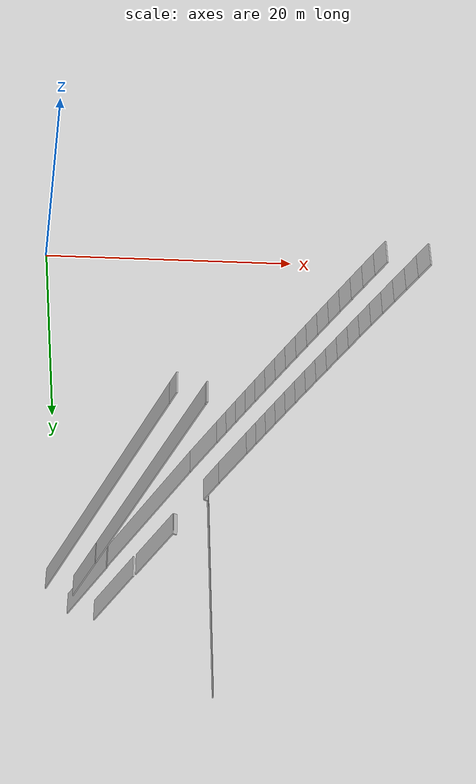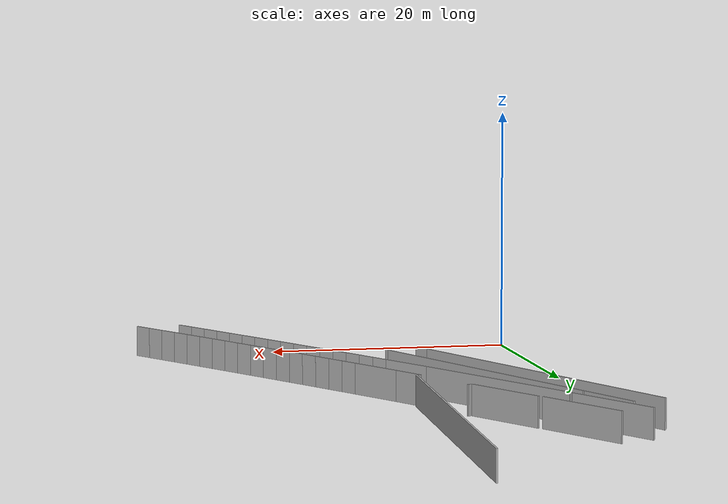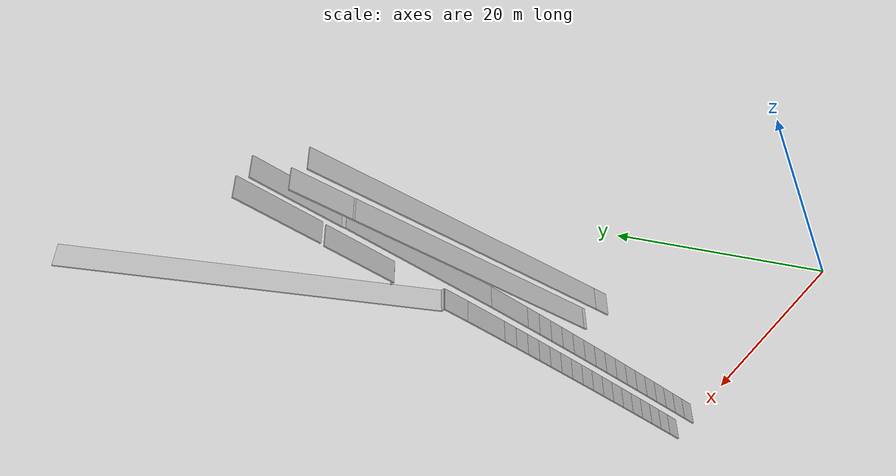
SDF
<?xml version="1.0" ?>
<sdf version="1.6">
  <model name="sps_4727">
    <pose frame="">0 0 0 0 -0 0</pose>
    <static>1</static>
    <self_collide>0</self_collide>
    <allow_auto_disable>0</allow_auto_disable>
    <link name="Wall324">
      <kinematic>0</kinematic>
      <gravity>1</gravity>
      <self_collide>0</self_collide>
      <collision name="collision">
        <geometry>
          <box>
            <size>0.205656 0.15 2.5</size>
          </box>
        </geometry>
        <pose frame="">0 0 0 0 -0 0</pose>
      </collision>
      <visual name="visual">
        <geometry>
          <box>
            <size>0.205656 0.15 2.5</size>
          </box>
        </geometry>
        <pose frame="">0 0 0 0 -0 0</pose>
        <cast_shadows>1</cast_shadows>
        <transparency>0.0</transparency>
      </visual>
      <pose frame="">3.78423 42.6752 1.25 0 0 -1.18594</pose>
    </link>
    <link name="Wall391">
      <kinematic>0</kinematic>
      <gravity>1</gravity>
      <self_collide>0</self_collide>
      <collision name="collision">
        <geometry>
          <box>
            <size>9.32021 0.15 2.5</size>
          </box>
        </geometry>
        <pose frame="">0 0 0 0 -0 0</pose>
      </collision>
      <visual name="visual">
        <geometry>
          <box>
            <size>9.32021 0.15 2.5</size>
          </box>
        </geometry>
        <pose frame="">0 0 0 0 -0 0</pose>
        <cast_shadows>1</cast_shadows>
        <transparency>0.0</transparency>
      </visual>
      <pose frame="">2.81676 47.721 1.25 0 0 -1.11304</pose>
    </link>
    <link name="Wall392">
      <kinematic>0</kinematic>
      <gravity>1</gravity>
      <self_collide>0</self_collide>
      <collision name="collision">
        <geometry>
          <box>
            <size>0.404799 0.15 2.5</size>
          </box>
        </geometry>
        <pose frame="">0 0 0 0 -0 0</pose>
      </collision>
      <visual name="visual">
        <geometry>
          <box>
            <size>0.404799 0.15 2.5</size>
          </box>
        </geometry>
        <pose frame="">0 0 0 0 -0 0</pose>
        <cast_shadows>1</cast_shadows>
        <transparency>0.0</transparency>
      </visual>
      <pose frame="">4.93566 43.3472 1.25 0 0 -1.27284</pose>
    </link>
    <link name="Wall393">
      <kinematic>0</kinematic>
      <gravity>1</gravity>
      <self_collide>0</self_collide>
      <collision name="collision">
        <geometry>
          <box>
            <size>9.08202 0.15 2.5</size>
          </box>
        </geometry>
        <pose frame="">0 0 0 0 -0 0</pose>
      </collision>
      <visual name="visual">
        <geometry>
          <box>
            <size>9.08202 0.15 2.5</size>
          </box>
        </geometry>
        <pose frame="">0 0 0 0 -0 0</pose>
        <cast_shadows>1</cast_shadows>
        <transparency>0.0</transparency>
      </visual>
      <pose frame="">5.54427 48.9319 1.25 0 0 -1.10902</pose>
    </link>
    <link name="Wall394">
      <kinematic>0</kinematic>
      <gravity>1</gravity>
      <self_collide>0</self_collide>
      <collision name="collision">
        <geometry>
          <box>
            <size>31.876 0.15 2.5</size>
          </box>
        </geometry>
        <pose frame="">0 0 0 0 -0 0</pose>
      </collision>
      <visual name="visual">
        <geometry>
          <box>
            <size>31.876 0.15 2.5</size>
          </box>
        </geometry>
        <pose frame="">0 0 0 0 -0 0</pose>
        <cast_shadows>1</cast_shadows>
        <transparency>0.0</transparency>
      </visual>
      <pose frame="">4.59255 32.6699 1.25 0 0 -1.18671</pose>
    </link>
    <link name="Wall395">
      <kinematic>0</kinematic>
      <gravity>1</gravity>
      <self_collide>0</self_collide>
      <collision name="collision">
        <geometry>
          <box>
            <size>1.59371 0.15 2.5</size>
          </box>
        </geometry>
        <pose frame="">0 0 0 0 -0 0</pose>
      </collision>
      <visual name="visual">
        <geometry>
          <box>
            <size>1.59371 0.15 2.5</size>
          </box>
        </geometry>
        <pose frame="">0 0 0 0 -0 0</pose>
        <cast_shadows>1</cast_shadows>
        <transparency>0.0</transparency>
      </visual>
      <pose frame="">10.8632 17.1543 1.25 0 0 -1.18671</pose>
    </link>
    <link name="Wall664">
      <kinematic>0</kinematic>
      <gravity>1</gravity>
      <self_collide>0</self_collide>
      <collision name="collision">
        <geometry>
          <box>
            <size>6.2563 0.15 2.5</size>
          </box>
        </geometry>
        <pose frame="">0 0 0 0 -0 0</pose>
      </collision>
      <visual name="visual">
        <geometry>
          <box>
            <size>6.2563 0.15 2.5</size>
          </box>
        </geometry>
        <pose frame="">0 0 0 0 -0 0</pose>
        <cast_shadows>1</cast_shadows>
        <transparency>0.0</transparency>
      </visual>
      <pose frame="">2.57363 45.6708 1.25 0 0 -1.18676</pose>
    </link>
    <link name="Wall665">
      <kinematic>0</kinematic>
      <gravity>1</gravity>
      <self_collide>0</self_collide>
      <collision name="collision">
        <geometry>
          <box>
            <size>26.6269 0.15 2.5</size>
          </box>
        </geometry>
        <pose frame="">0 0 0 0 -0 0</pose>
      </collision>
      <visual name="visual">
        <geometry>
          <box>
            <size>26.6269 0.15 2.5</size>
          </box>
        </geometry>
        <pose frame="">0 0 0 0 -0 0</pose>
        <cast_shadows>1</cast_shadows>
        <transparency>0.0</transparency>
      </visual>
      <pose frame="">8.81167 30.2365 1.25 0 0 -1.1867</pose>
    </link>
    <link name="Wall666">
      <kinematic>0</kinematic>
      <gravity>1</gravity>
      <self_collide>0</self_collide>
      <collision name="collision">
        <geometry>
          <box>
            <size>0.380969 0.15 2.5</size>
          </box>
        </geometry>
        <pose frame="">0 0 0 0 -0 0</pose>
      </collision>
      <visual name="visual">
        <geometry>
          <box>
            <size>0.380969 0.15 2.5</size>
          </box>
        </geometry>
        <pose frame="">0 0 0 0 -0 0</pose>
        <cast_shadows>1</cast_shadows>
        <transparency>0.0</transparency>
      </visual>
      <pose frame="">13.8719 17.7165 1.25 0 0 -1.1867</pose>
    </link>
    <link name="Wall669">
      <kinematic>0</kinematic>
      <gravity>1</gravity>
      <self_collide>0</self_collide>
      <collision name="collision">
        <geometry>
          <box>
            <size>35.9252 0.15 2.5</size>
          </box>
        </geometry>
        <pose frame="">0 0 0 0 -0 0</pose>
      </collision>
      <visual name="visual">
        <geometry>
          <box>
            <size>35.9252 0.15 2.5</size>
          </box>
        </geometry>
        <pose frame="">0 0 0 0 -0 0</pose>
        <cast_shadows>1</cast_shadows>
        <transparency>0.0</transparency>
      </visual>
      <pose frame="">15.6361 49.9612 1.25 0 0 -1.62929</pose>
    </link>
    <link name="Wall6446">
      <kinematic>0</kinematic>
      <gravity>1</gravity>
      <self_collide>0</self_collide>
      <collision name="collision">
        <geometry>
          <box>
            <size>17.3611 0.15 2.5</size>
          </box>
        </geometry>
        <pose frame="">0 0 0 0 -0 0</pose>
      </collision>
      <visual name="visual">
        <geometry>
          <box>
            <size>17.3611 0.15 2.5</size>
          </box>
        </geometry>
        <pose frame="">0 0 0 0 -0 0</pose>
        <cast_shadows>1</cast_shadows>
        <transparency>0.0</transparency>
      </visual>
      <pose frame="">8.88277 35.3924 1.25 0 0 -1.10642</pose>
    </link>
    <link name="Wall6447">
      <kinematic>0</kinematic>
      <gravity>1</gravity>
      <self_collide>0</self_collide>
      <collision name="collision">
        <geometry>
          <box>
            <size>5.01646 0.15 2.5</size>
          </box>
        </geometry>
        <pose frame="">0 0 0 0 -0 0</pose>
      </collision>
      <visual name="visual">
        <geometry>
          <box>
            <size>5.01646 0.15 2.5</size>
          </box>
        </geometry>
        <pose frame="">0 0 0 0 -0 0</pose>
        <cast_shadows>1</cast_shadows>
        <transparency>0.0</transparency>
      </visual>
      <pose frame="">13.9296 25.4068 1.25 0 0 -1.09038</pose>
    </link>
    <link name="Wall6448">
      <kinematic>0</kinematic>
      <gravity>1</gravity>
      <self_collide>0</self_collide>
      <collision name="collision">
        <geometry>
          <box>
            <size>1.68618 0.15 2.5</size>
          </box>
        </geometry>
        <pose frame="">0 0 0 0 -0 0</pose>
      </collision>
      <visual name="visual">
        <geometry>
          <box>
            <size>1.68618 0.15 2.5</size>
          </box>
        </geometry>
        <pose frame="">0 0 0 0 -0 0</pose>
        <cast_shadows>1</cast_shadows>
        <transparency>0.0</transparency>
      </visual>
      <pose frame="">15.4809 22.4361 1.25 0 0 -1.08717</pose>
    </link>
    <link name="Wall6449">
      <kinematic>0</kinematic>
      <gravity>1</gravity>
      <self_collide>0</self_collide>
      <collision name="collision">
        <geometry>
          <box>
            <size>1.68632 0.15 2.5</size>
          </box>
        </geometry>
        <pose frame="">0 0 0 0 -0 0</pose>
      </collision>
      <visual name="visual">
        <geometry>
          <box>
            <size>1.68632 0.15 2.5</size>
          </box>
        </geometry>
        <pose frame="">0 0 0 0 -0 0</pose>
        <cast_shadows>1</cast_shadows>
        <transparency>0.0</transparency>
      </visual>
      <pose frame="">16.2662 20.9439 1.25 0 0 -1.08554</pose>
    </link>
    <link name="Wall6450">
      <kinematic>0</kinematic>
      <gravity>1</gravity>
      <self_collide>0</self_collide>
      <collision name="collision">
        <geometry>
          <box>
            <size>1.68625 0.15 2.5</size>
          </box>
        </geometry>
        <pose frame="">0 0 0 0 -0 0</pose>
      </collision>
      <visual name="visual">
        <geometry>
          <box>
            <size>1.68625 0.15 2.5</size>
          </box>
        </geometry>
        <pose frame="">0 0 0 0 -0 0</pose>
        <cast_shadows>1</cast_shadows>
        <transparency>0.0</transparency>
      </visual>
      <pose frame="">17.054 19.453 1.25 0 0 -1.08376</pose>
    </link>
    <link name="Wall6451">
      <kinematic>0</kinematic>
      <gravity>1</gravity>
      <self_collide>0</self_collide>
      <collision name="collision">
        <geometry>
          <box>
            <size>1.68621 0.15 2.5</size>
          </box>
        </geometry>
        <pose frame="">0 0 0 0 -0 0</pose>
      </collision>
      <visual name="visual">
        <geometry>
          <box>
            <size>1.68621 0.15 2.5</size>
          </box>
        </geometry>
        <pose frame="">0 0 0 0 -0 0</pose>
        <cast_shadows>1</cast_shadows>
        <transparency>0.0</transparency>
      </visual>
      <pose frame="">17.8444 17.9635 1.25 0 0 -1.0821</pose>
    </link>
    <link name="Wall6452">
      <kinematic>0</kinematic>
      <gravity>1</gravity>
      <self_collide>0</self_collide>
      <collision name="collision">
        <geometry>
          <box>
            <size>1.68612 0.15 2.5</size>
          </box>
        </geometry>
        <pose frame="">0 0 0 0 -0 0</pose>
      </collision>
      <visual name="visual">
        <geometry>
          <box>
            <size>1.68612 0.15 2.5</size>
          </box>
        </geometry>
        <pose frame="">0 0 0 0 -0 0</pose>
        <cast_shadows>1</cast_shadows>
        <transparency>0.0</transparency>
      </visual>
      <pose frame="">18.6374 16.4754 1.25 0 0 -1.08035</pose>
    </link>
    <link name="Wall6453">
      <kinematic>0</kinematic>
      <gravity>1</gravity>
      <self_collide>0</self_collide>
      <collision name="collision">
        <geometry>
          <box>
            <size>1.68625 0.15 2.5</size>
          </box>
        </geometry>
        <pose frame="">0 0 0 0 -0 0</pose>
      </collision>
      <visual name="visual">
        <geometry>
          <box>
            <size>1.68625 0.15 2.5</size>
          </box>
        </geometry>
        <pose frame="">0 0 0 0 -0 0</pose>
        <cast_shadows>1</cast_shadows>
        <transparency>0.0</transparency>
      </visual>
      <pose frame="">19.4328 14.9886 1.25 0 0 -1.07875</pose>
    </link>
    <link name="Wall6454">
      <kinematic>0</kinematic>
      <gravity>1</gravity>
      <self_collide>0</self_collide>
      <collision name="collision">
        <geometry>
          <box>
            <size>1.68606 0.15 2.5</size>
          </box>
        </geometry>
        <pose frame="">0 0 0 0 -0 0</pose>
      </collision>
      <visual name="visual">
        <geometry>
          <box>
            <size>1.68606 0.15 2.5</size>
          </box>
        </geometry>
        <pose frame="">0 0 0 0 -0 0</pose>
        <cast_shadows>1</cast_shadows>
        <transparency>0.0</transparency>
      </visual>
      <pose frame="">20.2307 13.5032 1.25 0 0 -1.07697</pose>
    </link>
    <link name="Wall6455">
      <kinematic>0</kinematic>
      <gravity>1</gravity>
      <self_collide>0</self_collide>
      <collision name="collision">
        <geometry>
          <box>
            <size>1.6862 0.15 2.5</size>
          </box>
        </geometry>
        <pose frame="">0 0 0 0 -0 0</pose>
      </collision>
      <visual name="visual">
        <geometry>
          <box>
            <size>1.6862 0.15 2.5</size>
          </box>
        </geometry>
        <pose frame="">0 0 0 0 -0 0</pose>
        <cast_shadows>1</cast_shadows>
        <transparency>0.0</transparency>
      </visual>
      <pose frame="">21.0312 12.0192 1.25 0 0 -1.07529</pose>
    </link>
    <link name="Wall6456">
      <kinematic>0</kinematic>
      <gravity>1</gravity>
      <self_collide>0</self_collide>
      <collision name="collision">
        <geometry>
          <box>
            <size>1.68613 0.15 2.5</size>
          </box>
        </geometry>
        <pose frame="">0 0 0 0 -0 0</pose>
      </collision>
      <visual name="visual">
        <geometry>
          <box>
            <size>1.68613 0.15 2.5</size>
          </box>
        </geometry>
        <pose frame="">0 0 0 0 -0 0</pose>
        <cast_shadows>1</cast_shadows>
        <transparency>0.0</transparency>
      </visual>
      <pose frame="">21.8341 10.5365 1.25 0 0 -1.07362</pose>
    </link>
    <link name="Wall6457">
      <kinematic>0</kinematic>
      <gravity>1</gravity>
      <self_collide>0</self_collide>
      <collision name="collision">
        <geometry>
          <box>
            <size>1.68623 0.15 2.5</size>
          </box>
        </geometry>
        <pose frame="">0 0 0 0 -0 0</pose>
      </collision>
      <visual name="visual">
        <geometry>
          <box>
            <size>1.68623 0.15 2.5</size>
          </box>
        </geometry>
        <pose frame="">0 0 0 0 -0 0</pose>
        <cast_shadows>1</cast_shadows>
        <transparency>0.0</transparency>
      </visual>
      <pose frame="">22.6395 9.0551 1.25 0 0 -1.072</pose>
    </link>
    <link name="Wall6458">
      <kinematic>0</kinematic>
      <gravity>1</gravity>
      <self_collide>0</self_collide>
      <collision name="collision">
        <geometry>
          <box>
            <size>1.68616 0.15 2.5</size>
          </box>
        </geometry>
        <pose frame="">0 0 0 0 -0 0</pose>
      </collision>
      <visual name="visual">
        <geometry>
          <box>
            <size>1.68616 0.15 2.5</size>
          </box>
        </geometry>
        <pose frame="">0 0 0 0 -0 0</pose>
        <cast_shadows>1</cast_shadows>
        <transparency>0.0</transparency>
      </visual>
      <pose frame="">23.4473 7.575 1.25 0 0 -1.07041</pose>
    </link>
    <link name="Wall6459">
      <kinematic>0</kinematic>
      <gravity>1</gravity>
      <self_collide>0</self_collide>
      <collision name="collision">
        <geometry>
          <box>
            <size>1.68638 0.15 2.5</size>
          </box>
        </geometry>
        <pose frame="">0 0 0 0 -0 0</pose>
      </collision>
      <visual name="visual">
        <geometry>
          <box>
            <size>1.68638 0.15 2.5</size>
          </box>
        </geometry>
        <pose frame="">0 0 0 0 -0 0</pose>
        <cast_shadows>1</cast_shadows>
        <transparency>0.0</transparency>
      </visual>
      <pose frame="">24.2577 6.09618 1.25 0 0 -1.06867</pose>
    </link>
    <link name="Wall6460">
      <kinematic>0</kinematic>
      <gravity>1</gravity>
      <self_collide>0</self_collide>
      <collision name="collision">
        <geometry>
          <box>
            <size>1.68617 0.15 2.5</size>
          </box>
        </geometry>
        <pose frame="">0 0 0 0 -0 0</pose>
      </collision>
      <visual name="visual">
        <geometry>
          <box>
            <size>1.68617 0.15 2.5</size>
          </box>
        </geometry>
        <pose frame="">0 0 0 0 -0 0</pose>
        <cast_shadows>1</cast_shadows>
        <transparency>0.0</transparency>
      </visual>
      <pose frame="">25.0706 4.61879 1.25 0 0 -1.06686</pose>
    </link>
    <link name="Wall6461">
      <kinematic>0</kinematic>
      <gravity>1</gravity>
      <self_collide>0</self_collide>
      <collision name="collision">
        <geometry>
          <box>
            <size>1.68615 0.15 2.5</size>
          </box>
        </geometry>
        <pose frame="">0 0 0 0 -0 0</pose>
      </collision>
      <visual name="visual">
        <geometry>
          <box>
            <size>1.68615 0.15 2.5</size>
          </box>
        </geometry>
        <pose frame="">0 0 0 0 -0 0</pose>
        <cast_shadows>1</cast_shadows>
        <transparency>0.0</transparency>
      </visual>
      <pose frame="">25.886 3.1429 1.25 0 0 -1.06524</pose>
    </link>
    <link name="Wall6462">
      <kinematic>0</kinematic>
      <gravity>1</gravity>
      <self_collide>0</self_collide>
      <collision name="collision">
        <geometry>
          <box>
            <size>1.68607 0.15 2.5</size>
          </box>
        </geometry>
        <pose frame="">0 0 0 0 -0 0</pose>
      </collision>
      <visual name="visual">
        <geometry>
          <box>
            <size>1.68607 0.15 2.5</size>
          </box>
        </geometry>
        <pose frame="">0 0 0 0 -0 0</pose>
        <cast_shadows>1</cast_shadows>
        <transparency>0.0</transparency>
      </visual>
      <pose frame="">26.704 1.6685 1.25 0 0 -1.06331</pose>
    </link>
    <link name="Wall6463">
      <kinematic>0</kinematic>
      <gravity>1</gravity>
      <self_collide>0</self_collide>
      <collision name="collision">
        <geometry>
          <box>
            <size>1.68628 0.15 2.5</size>
          </box>
        </geometry>
        <pose frame="">0 0 0 0 -0 0</pose>
      </collision>
      <visual name="visual">
        <geometry>
          <box>
            <size>1.68628 0.15 2.5</size>
          </box>
        </geometry>
        <pose frame="">0 0 0 0 -0 0</pose>
        <cast_shadows>1</cast_shadows>
        <transparency>0.0</transparency>
      </visual>
      <pose frame="">27.5245 0.195418 1.25 0 0 -1.06189</pose>
    </link>
    <link name="Wall7347">
      <kinematic>0</kinematic>
      <gravity>1</gravity>
      <self_collide>0</self_collide>
      <collision name="collision">
        <geometry>
          <box>
            <size>7.95327 0.15 2.5</size>
          </box>
        </geometry>
        <pose frame="">0 0 0 0 -0 0</pose>
      </collision>
      <visual name="visual">
        <geometry>
          <box>
            <size>7.95327 0.15 2.5</size>
          </box>
        </geometry>
        <pose frame="">0 0 0 0 -0 0</pose>
        <cast_shadows>1</cast_shadows>
        <transparency>0.0</transparency>
      </visual>
      <pose frame="">9.62426 41.0012 1.25 0 0 -1.10462</pose>
    </link>
    <link name="Wall7348">
      <kinematic>0</kinematic>
      <gravity>1</gravity>
      <self_collide>0</self_collide>
      <collision name="collision">
        <geometry>
          <box>
            <size>0.399638 0.15 2.5</size>
          </box>
        </geometry>
        <pose frame="">0 0 0 0 -0 0</pose>
      </collision>
      <visual name="visual">
        <geometry>
          <box>
            <size>0.399638 0.15 2.5</size>
          </box>
        </geometry>
        <pose frame="">0 0 0 0 -0 0</pose>
        <cast_shadows>1</cast_shadows>
        <transparency>0.0</transparency>
      </visual>
      <pose frame="">11.5901 37.5387 1.25 0 -0 0.466175</pose>
    </link>
    <link name="Wall9277">
      <kinematic>0</kinematic>
      <gravity>1</gravity>
      <self_collide>0</self_collide>
      <collision name="collision">
        <geometry>
          <box>
            <size>1.68081 0.15 2.5</size>
          </box>
        </geometry>
        <pose frame="">0 0 0 0 -0 0</pose>
      </collision>
      <visual name="visual">
        <geometry>
          <box>
            <size>1.68081 0.15 2.5</size>
          </box>
        </geometry>
        <pose frame="">0 0 0 0 -0 0</pose>
        <cast_shadows>1</cast_shadows>
        <transparency>0.0</transparency>
      </visual>
      <pose frame="">31.1389 0.28749 1.25 0 -0 2.08139</pose>
    </link>
    <link name="Wall9278">
      <kinematic>0</kinematic>
      <gravity>1</gravity>
      <self_collide>0</self_collide>
      <collision name="collision">
        <geometry>
          <box>
            <size>1.68071 0.15 2.5</size>
          </box>
        </geometry>
        <pose frame="">0 0 0 0 -0 0</pose>
      </collision>
      <visual name="visual">
        <geometry>
          <box>
            <size>1.68071 0.15 2.5</size>
          </box>
        </geometry>
        <pose frame="">0 0 0 0 -0 0</pose>
        <cast_shadows>1</cast_shadows>
        <transparency>0.0</transparency>
      </visual>
      <pose frame="">30.3188 1.75459 1.25 0 -0 2.07964</pose>
    </link>
    <link name="Wall9279">
      <kinematic>0</kinematic>
      <gravity>1</gravity>
      <self_collide>0</self_collide>
      <collision name="collision">
        <geometry>
          <box>
            <size>1.68092 0.15 2.5</size>
          </box>
        </geometry>
        <pose frame="">0 0 0 0 -0 0</pose>
      </collision>
      <visual name="visual">
        <geometry>
          <box>
            <size>1.68092 0.15 2.5</size>
          </box>
        </geometry>
        <pose frame="">0 0 0 0 -0 0</pose>
        <cast_shadows>1</cast_shadows>
        <transparency>0.0</transparency>
      </visual>
      <pose frame="">29.5012 3.2231 1.25 0 -0 2.07807</pose>
    </link>
    <link name="Wall9280">
      <kinematic>0</kinematic>
      <gravity>1</gravity>
      <self_collide>0</self_collide>
      <collision name="collision">
        <geometry>
          <box>
            <size>1.68069 0.15 2.5</size>
          </box>
        </geometry>
        <pose frame="">0 0 0 0 -0 0</pose>
      </collision>
      <visual name="visual">
        <geometry>
          <box>
            <size>1.68069 0.15 2.5</size>
          </box>
        </geometry>
        <pose frame="">0 0 0 0 -0 0</pose>
        <cast_shadows>1</cast_shadows>
        <transparency>0.0</transparency>
      </visual>
      <pose frame="">28.6858 4.69292 1.25 0 -0 2.07641</pose>
    </link>
    <link name="Wall9281">
      <kinematic>0</kinematic>
      <gravity>1</gravity>
      <self_collide>0</self_collide>
      <collision name="collision">
        <geometry>
          <box>
            <size>1.68081 0.15 2.5</size>
          </box>
        </geometry>
        <pose frame="">0 0 0 0 -0 0</pose>
      </collision>
      <visual name="visual">
        <geometry>
          <box>
            <size>1.68081 0.15 2.5</size>
          </box>
        </geometry>
        <pose frame="">0 0 0 0 -0 0</pose>
        <cast_shadows>1</cast_shadows>
        <transparency>0.0</transparency>
      </visual>
      <pose frame="">27.8731 6.16411 1.25 0 -0 2.07458</pose>
    </link>
    <link name="Wall9282">
      <kinematic>0</kinematic>
      <gravity>1</gravity>
      <self_collide>0</self_collide>
      <collision name="collision">
        <geometry>
          <box>
            <size>1.68074 0.15 2.5</size>
          </box>
        </geometry>
        <pose frame="">0 0 0 0 -0 0</pose>
      </collision>
      <visual name="visual">
        <geometry>
          <box>
            <size>1.68074 0.15 2.5</size>
          </box>
        </geometry>
        <pose frame="">0 0 0 0 -0 0</pose>
        <cast_shadows>1</cast_shadows>
        <transparency>0.0</transparency>
      </visual>
      <pose frame="">27.0627 7.63661 1.25 0 -0 2.07324</pose>
    </link>
    <link name="Wall9283">
      <kinematic>0</kinematic>
      <gravity>1</gravity>
      <self_collide>0</self_collide>
      <collision name="collision">
        <geometry>
          <box>
            <size>1.68086 0.15 2.5</size>
          </box>
        </geometry>
        <pose frame="">0 0 0 0 -0 0</pose>
      </collision>
      <visual name="visual">
        <geometry>
          <box>
            <size>1.68086 0.15 2.5</size>
          </box>
        </geometry>
        <pose frame="">0 0 0 0 -0 0</pose>
        <cast_shadows>1</cast_shadows>
        <transparency>0.0</transparency>
      </visual>
      <pose frame="">26.2548 9.11052 1.25 0 -0 2.07117</pose>
    </link>
    <link name="Wall9284">
      <kinematic>0</kinematic>
      <gravity>1</gravity>
      <self_collide>0</self_collide>
      <collision name="collision">
        <geometry>
          <box>
            <size>1.68074 0.15 2.5</size>
          </box>
        </geometry>
        <pose frame="">0 0 0 0 -0 0</pose>
      </collision>
      <visual name="visual">
        <geometry>
          <box>
            <size>1.68074 0.15 2.5</size>
          </box>
        </geometry>
        <pose frame="">0 0 0 0 -0 0</pose>
        <cast_shadows>1</cast_shadows>
        <transparency>0.0</transparency>
      </visual>
      <pose frame="">25.4496 10.5859 1.25 0 -0 2.0696</pose>
    </link>
    <link name="Wall9285">
      <kinematic>0</kinematic>
      <gravity>1</gravity>
      <self_collide>0</self_collide>
      <collision name="collision">
        <geometry>
          <box>
            <size>1.68095 0.15 2.5</size>
          </box>
        </geometry>
        <pose frame="">0 0 0 0 -0 0</pose>
      </collision>
      <visual name="visual">
        <geometry>
          <box>
            <size>1.68095 0.15 2.5</size>
          </box>
        </geometry>
        <pose frame="">0 0 0 0 -0 0</pose>
        <cast_shadows>1</cast_shadows>
        <transparency>0.0</transparency>
      </visual>
      <pose frame="">24.6468 12.0626 1.25 0 -0 2.068</pose>
    </link>
    <link name="Wall9286">
      <kinematic>0</kinematic>
      <gravity>1</gravity>
      <self_collide>0</self_collide>
      <collision name="collision">
        <geometry>
          <box>
            <size>1.68071 0.15 2.5</size>
          </box>
        </geometry>
        <pose frame="">0 0 0 0 -0 0</pose>
      </collision>
      <visual name="visual">
        <geometry>
          <box>
            <size>1.68071 0.15 2.5</size>
          </box>
        </geometry>
        <pose frame="">0 0 0 0 -0 0</pose>
        <cast_shadows>1</cast_shadows>
        <transparency>0.0</transparency>
      </visual>
      <pose frame="">23.8464 13.5406 1.25 0 -0 2.06622</pose>
    </link>
    <link name="Wall9287">
      <kinematic>0</kinematic>
      <gravity>1</gravity>
      <self_collide>0</self_collide>
      <collision name="collision">
        <geometry>
          <box>
            <size>1.68076 0.15 2.5</size>
          </box>
        </geometry>
        <pose frame="">0 0 0 0 -0 0</pose>
      </collision>
      <visual name="visual">
        <geometry>
          <box>
            <size>1.68076 0.15 2.5</size>
          </box>
        </geometry>
        <pose frame="">0 0 0 0 -0 0</pose>
        <cast_shadows>1</cast_shadows>
        <transparency>0.0</transparency>
      </visual>
      <pose frame="">23.0485 15.0199 1.25 0 -0 2.06459</pose>
    </link>
    <link name="Wall9288">
      <kinematic>0</kinematic>
      <gravity>1</gravity>
      <self_collide>0</self_collide>
      <collision name="collision">
        <geometry>
          <box>
            <size>1.68084 0.15 2.5</size>
          </box>
        </geometry>
        <pose frame="">0 0 0 0 -0 0</pose>
      </collision>
      <visual name="visual">
        <geometry>
          <box>
            <size>1.68084 0.15 2.5</size>
          </box>
        </geometry>
        <pose frame="">0 0 0 0 -0 0</pose>
        <cast_shadows>1</cast_shadows>
        <transparency>0.0</transparency>
      </visual>
      <pose frame="">22.2531 16.5006 1.25 0 -0 2.06292</pose>
    </link>
    <link name="Wall9289">
      <kinematic>0</kinematic>
      <gravity>1</gravity>
      <self_collide>0</self_collide>
      <collision name="collision">
        <geometry>
          <box>
            <size>1.68084 0.15 2.5</size>
          </box>
        </geometry>
        <pose frame="">0 0 0 0 -0 0</pose>
      </collision>
      <visual name="visual">
        <geometry>
          <box>
            <size>1.68084 0.15 2.5</size>
          </box>
        </geometry>
        <pose frame="">0 0 0 0 -0 0</pose>
        <cast_shadows>1</cast_shadows>
        <transparency>0.0</transparency>
      </visual>
      <pose frame="">21.4603 17.9827 1.25 0 -0 2.06114</pose>
    </link>
    <link name="Wall9290">
      <kinematic>0</kinematic>
      <gravity>1</gravity>
      <self_collide>0</self_collide>
      <collision name="collision">
        <geometry>
          <box>
            <size>1.68099 0.15 2.5</size>
          </box>
        </geometry>
        <pose frame="">0 0 0 0 -0 0</pose>
      </collision>
      <visual name="visual">
        <geometry>
          <box>
            <size>1.68099 0.15 2.5</size>
          </box>
        </geometry>
        <pose frame="">0 0 0 0 -0 0</pose>
        <cast_shadows>1</cast_shadows>
        <transparency>0.0</transparency>
      </visual>
      <pose frame="">20.6699 19.4662 1.25 0 -0 2.05953</pose>
    </link>
    <link name="Wall9291">
      <kinematic>0</kinematic>
      <gravity>1</gravity>
      <self_collide>0</self_collide>
      <collision name="collision">
        <geometry>
          <box>
            <size>1.68065 0.15 2.5</size>
          </box>
        </geometry>
        <pose frame="">0 0 0 0 -0 0</pose>
      </collision>
      <visual name="visual">
        <geometry>
          <box>
            <size>1.68065 0.15 2.5</size>
          </box>
        </geometry>
        <pose frame="">0 0 0 0 -0 0</pose>
        <cast_shadows>1</cast_shadows>
        <transparency>0.0</transparency>
      </visual>
      <pose frame="">19.8819 20.9509 1.25 0 -0 2.05783</pose>
    </link>
    <link name="Wall9292">
      <kinematic>0</kinematic>
      <gravity>1</gravity>
      <self_collide>0</self_collide>
      <collision name="collision">
        <geometry>
          <box>
            <size>1.68064 0.15 2.5</size>
          </box>
        </geometry>
        <pose frame="">0 0 0 0 -0 0</pose>
      </collision>
      <visual name="visual">
        <geometry>
          <box>
            <size>1.68064 0.15 2.5</size>
          </box>
        </geometry>
        <pose frame="">0 0 0 0 -0 0</pose>
        <cast_shadows>1</cast_shadows>
        <transparency>0.0</transparency>
      </visual>
      <pose frame="">19.0967 22.4368 1.25 0 -0 2.05611</pose>
    </link>
    <link name="Wall9293">
      <kinematic>0</kinematic>
      <gravity>1</gravity>
      <self_collide>0</self_collide>
      <collision name="collision">
        <geometry>
          <box>
            <size>1.68083 0.15 2.5</size>
          </box>
        </geometry>
        <pose frame="">0 0 0 0 -0 0</pose>
      </collision>
      <visual name="visual">
        <geometry>
          <box>
            <size>1.68083 0.15 2.5</size>
          </box>
        </geometry>
        <pose frame="">0 0 0 0 -0 0</pose>
        <cast_shadows>1</cast_shadows>
        <transparency>0.0</transparency>
      </visual>
      <pose frame="">18.3139 23.9241 1.25 0 -0 2.05445</pose>
    </link>
    <link name="Wall9294">
      <kinematic>0</kinematic>
      <gravity>1</gravity>
      <self_collide>0</self_collide>
      <collision name="collision">
        <geometry>
          <box>
            <size>5.09196 0.15 2.5</size>
          </box>
        </geometry>
        <pose frame="">0 0 0 0 -0 0</pose>
      </collision>
      <visual name="visual">
        <geometry>
          <box>
            <size>5.09196 0.15 2.5</size>
          </box>
        </geometry>
        <pose frame="">0 0 0 0 -0 0</pose>
        <cast_shadows>1</cast_shadows>
        <transparency>0.0</transparency>
      </visual>
      <pose frame="">16.7468 26.9261 1.25 0 -0 2.05103</pose>
    </link>
    <link name="Wall9295">
      <kinematic>0</kinematic>
      <gravity>1</gravity>
      <self_collide>0</self_collide>
      <collision name="collision">
        <geometry>
          <box>
            <size>2.98401 0.15 2.5</size>
          </box>
        </geometry>
        <pose frame="">0 0 0 0 -0 0</pose>
      </collision>
      <visual name="visual">
        <geometry>
          <box>
            <size>2.98401 0.15 2.5</size>
          </box>
        </geometry>
        <pose frame="">0 0 0 0 -0 0</pose>
        <cast_shadows>1</cast_shadows>
        <transparency>0.0</transparency>
      </visual>
      <pose frame="">14.8996 30.5167 1.25 0 -0 2.03725</pose>
    </link>
    <link name="Wall9296">
      <kinematic>0</kinematic>
      <gravity>1</gravity>
      <self_collide>0</self_collide>
      <collision name="collision">
        <geometry>
          <box>
            <size>0.400185 0.15 2.5</size>
          </box>
        </geometry>
        <pose frame="">0 0 0 0 -0 0</pose>
      </collision>
      <visual name="visual">
        <geometry>
          <box>
            <size>0.400185 0.15 2.5</size>
          </box>
        </geometry>
        <pose frame="">0 0 0 0 -0 0</pose>
        <cast_shadows>1</cast_shadows>
        <transparency>0.0</transparency>
      </visual>
      <pose frame="">14.4074 31.9393 1.25 0 -0 0.466512</pose>
    </link>
  </model>
</sdf>
